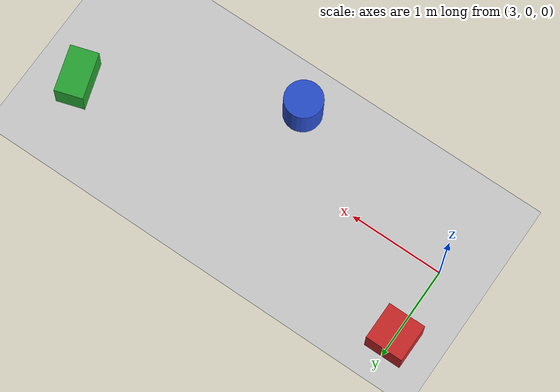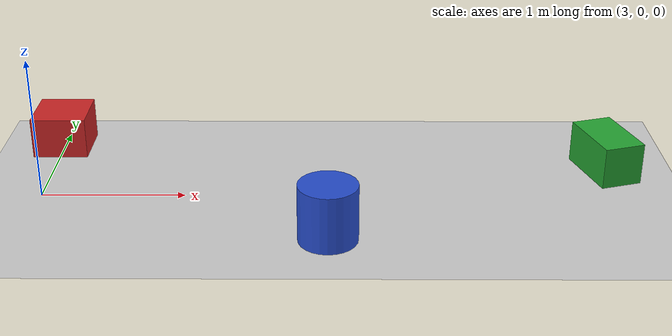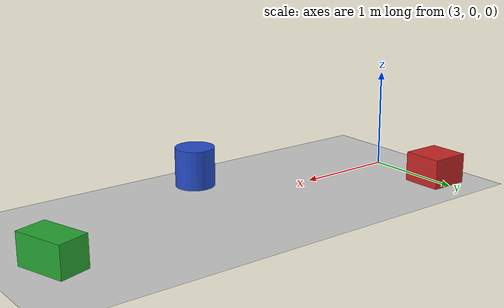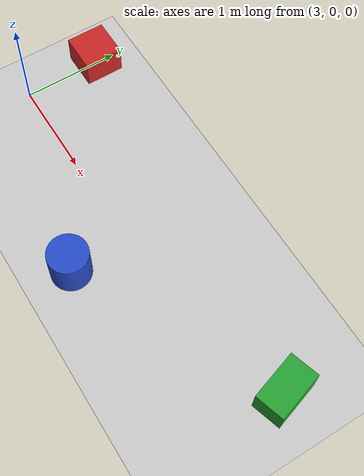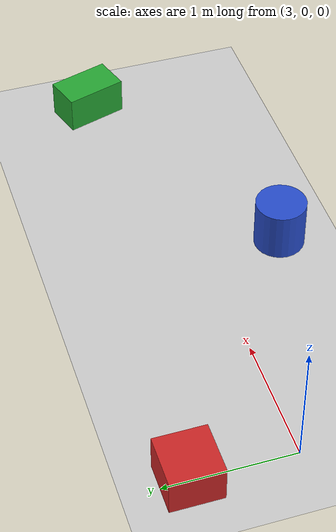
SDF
<?xml version="1.0" ?>
<sdf version="1.6">
  <world name="mechdog_objects_simple">

    <physics type="ode">
      <max_step_size>0.001</max_step_size>
      <real_time_factor>1.0</real_time_factor>
      <real_time_update_rate>1000</real_time_update_rate>
      <gravity>0 0 -9.81</gravity>
    </physics>

    <scene>
      <ambient>0.4 0.4 0.4 1</ambient>
      <background>0.7 0.7 0.7 1</background>
      <shadows>true</shadows>
    </scene>

    <light name="sun" type="directional">
      <cast_shadows>true</cast_shadows>
      <pose>0 0 10 0 0 0</pose>
      <diffuse>0.8 0.8 0.8 1</diffuse>
      <specular>0.2 0.2 0.2 1</specular>
      <attenuation><range>1000</range><constant>0.9</constant><linear>0.01</linear><quadratic>0.001</quadratic></attenuation>
      <direction>-0.5 0.1 -0.9</direction>
    </light>

    <model name="ground_plane">
      <static>true</static>
      <link name="link">
        <collision name="collision">
          <geometry><plane><normal>0 0 1</normal><size>100 100</size></plane></geometry>
          <surface><friction><ode><mu>0.8</mu><mu2>0.8</mu2></ode></friction></surface>
        </collision>
        <visual name="visual">
          <cast_shadows>false</cast_shadows>
          <geometry><plane><normal>0 0 1</normal><size>100 100</size></plane></geometry>
          <material><script><uri>file://media/materials/scripts/gazebo.material</uri><name>Gazebo/Grey</name></script></material>
        </visual>
      </link>
    </model>

    <model name="obstacle_box_1">
      <static>true</static>
      <pose>3.0 0.8 0.15 0 0 0</pose>
      <link name="link">
        <collision name="collision"><geometry><box><size>0.4 0.4 0.3</size></box></geometry></collision>
        <visual name="visual">
          <geometry><box><size>0.4 0.4 0.3</size></box></geometry>
          <material><script><uri>file://media/materials/scripts/gazebo.material</uri><name>Gazebo/Red</name></script></material>
        </visual>
      </link>
    </model>

    <model name="obstacle_cylinder_1">
      <static>true</static>
      <pose>5.0 -0.6 0.2 0 0 0</pose>
      <link name="link">
        <collision name="collision"><geometry><cylinder><radius>0.2</radius><length>0.4</length></cylinder></geometry></collision>
        <visual name="visual">
          <geometry><cylinder><radius>0.2</radius><length>0.4</length></cylinder></geometry>
          <material><script><uri>file://media/materials/scripts/gazebo.material</uri><name>Gazebo/Blue</name></script></material>
        </visual>
      </link>
    </model>

    <model name="obstacle_box_2">
      <static>true</static>
      <pose>7.0 0.4 0.15 0 0 0.3</pose>
      <link name="link">
        <collision name="collision"><geometry><box><size>0.3 0.5 0.3</size></box></geometry></collision>
        <visual name="visual">
          <geometry><box><size>0.3 0.5 0.3</size></box></geometry>
          <material><script><uri>file://media/materials/scripts/gazebo.material</uri><name>Gazebo/Green</name></script></material>
        </visual>
      </link>
    </model>

    <gui fullscreen='0'>
      <camera name='user_camera'>
        <pose>-5.0 3.0 8.0 0 0.6 0.3</pose>
        <view_controller>orbit</view_controller>
      </camera>
    </gui>

  </world>
</sdf>
